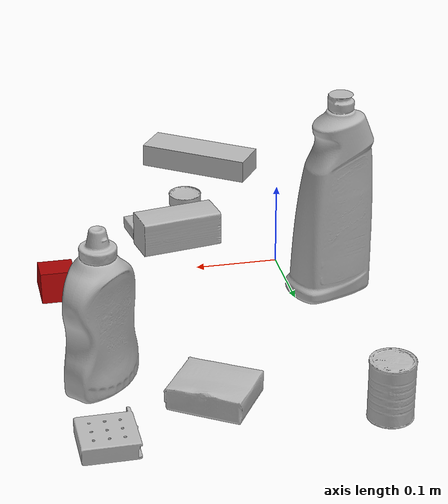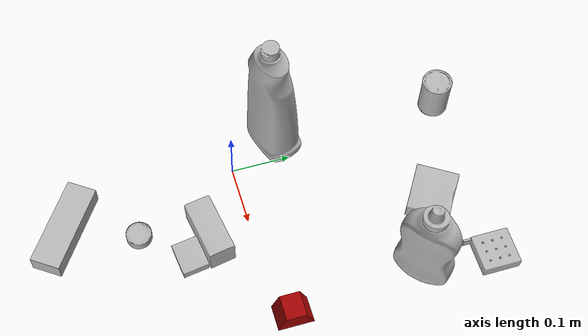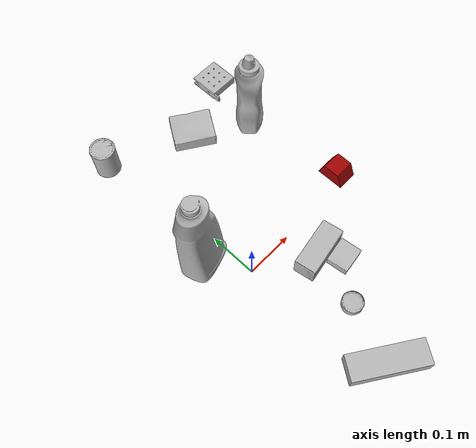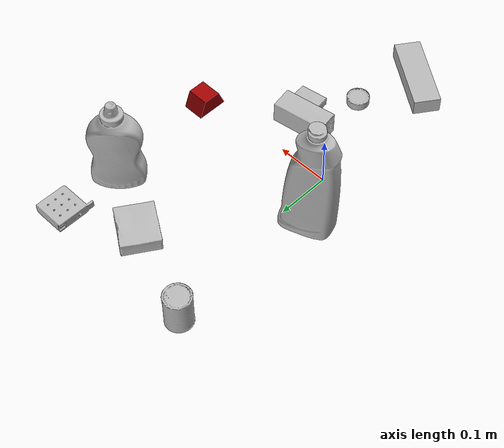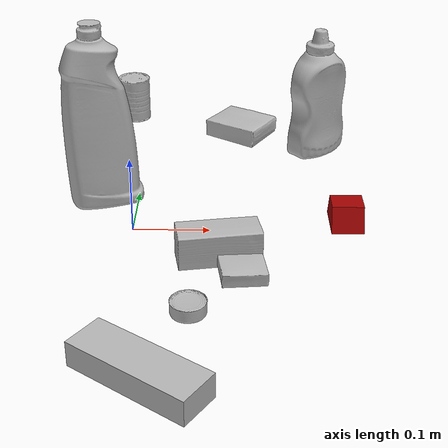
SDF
<sdf version="1.4">
  <world name="default">
    <light name="light1" type="point">
      <pose>0 0 1 0 0 0</pose>
      <diffuse>3 3 3 1</diffuse>
      <specular>3 3 3 1</specular>
    </light>
    <light name="light2" type="point">
      <pose>0 0.5 2 0 0 0</pose>
      <diffuse>1 1 1 1</diffuse>
      <specular>1 1 1 1</specular>
    </light>
    <light name="light3" type="point">
      <pose>0 0.5 2 0 0 0</pose>
      <diffuse>3 3 3 1</diffuse>
      <specular>3 3 3 1</specular>
    </light>
    <scene>
      <ambient>0.7 0.7 0.7</ambient>
    </scene>
    <model name="bottle1">
      <link name="link_bottle1">
        <collision name="default">
          <geometry>
            <mesh>
              <uri>model://mustard_bottle/collision_meshes/collision.obj</uri>
              <scale>1.0 1.0 1.0</scale>
            </mesh>
          </geometry>
          <surface>
            <friction>
              <ode>
                <mu>0.5</mu>
                <mu2>0.5</mu2>
              </ode>
            </friction>
          <contact>
        <ode>
            <max_vel>0</max_vel>
            <min_depth>0.0001</min_depth>
            <kp>1e8</kp>
        </ode>
    </contact></surface>
        </collision>
        <visual name="default">
          <geometry>
            <mesh>
              <uri>model://mustard_bottle/visual_meshes/visual.dae</uri>
              <scale>1.0 1.0 1.0</scale>
            </mesh>
          </geometry>
        </visual>
        <inertial>
          <mass>0.6762011647224426</mass>
          <pose>0.0005032454500906169 -0.00015647402324248105 -0.0174757931381464 0.0004182330054410876 0.0009465793907204819 0.02485376893997312</pose>
          <inertia>
            <ixx>0.001877718</ixx>
            <iyy>0.0016475386</iyy>
            <izz>0.0004948735</izz>
            <ixy>0</ixy>
            <ixz>0</ixz>
            <iyz>0</iyz>
          </inertia>
        </inertial>
      </link>
      <pose>0.2562059164047241 0.24801185727119446 0.09615200012922287 1.4504944719496044e-05 1.6318198130880075e-05 2.2946861771902074</pose>
    </model>
    <model name="bottle2">
      <link name="link_bottle2">
        <collision name="default">
          <geometry>
            <mesh>
              <uri>model://bleach_cleanser/collision_meshes/collision.obj</uri>
              <scale>1.0 1.0 1.0</scale>
            </mesh>
          </geometry>
          <surface>
            <friction>
              <ode>
                <mu>0.5</mu>
                <mu2>0.5</mu2>
              </ode>
            </friction>
          <contact>
        <ode>
            <max_vel>0</max_vel>
            <min_depth>0.0001</min_depth>
            <kp>1e8</kp>
        </ode>
    </contact></surface>
        </collision>
        <visual name="default">
          <geometry>
            <mesh>
              <uri>model://bleach_cleanser/visual_meshes/visual.dae</uri>
              <scale>1.0 1.0 1.0</scale>
            </mesh>
          </geometry>
        </visual>
        <inertial>
          <mass>1.3947629928588867</mass>
          <pose>0.00012193183647468686 0.0037838828284293413 -0.02442161738872528 -0.07381670616230765 0.000420115363335565 -0.006875068774372656</pose>
          <inertia>
            <ixx>0.0067885136</ixx>
            <iyy>0.006325901</iyy>
            <izz>0.0011606595</izz>
            <ixy>0</ixy>
            <ixz>0</ixz>
            <iyz>0</iyz>
          </inertia>
        </inertial>
      </link>
      <pose>-0.04519686475396156 0.08468474447727203 0.12578411400318146 -0.00019981065731093265 1.638980417549781e-05 1.9115254760070866</pose>
    </model>
    <model name="toy1">
      <link name="link_toy1">
        <collision name="default">
          <geometry>
            <mesh>
              <uri>model://nine_hole_peg_test/collision_meshes/collision.obj</uri>
              <scale>0.5 0.5 0.5</scale>
            </mesh>
          </geometry>
          <surface>
            <friction>
              <ode>
                <mu>0.5</mu>
                <mu2>0.5</mu2>
              </ode>
            </friction>
          <contact>
        <ode>
            <max_vel>0</max_vel>
            <min_depth>0.0001</min_depth>
            <kp>1e8</kp>
        </ode>
    </contact></surface>
        </collision>
        <visual name="default">
          <geometry>
            <mesh>
              <uri>model://nine_hole_peg_test/visual_meshes/visual.dae</uri>
              <scale>0.5 0.5 0.5</scale>
            </mesh>
          </geometry>
        </visual>
        <inertial>
          <mass>0.11556825786828995</mass>
          <pose>-0.0023086932487785816 -0.004823807626962662 1.3230343029135838e-05 -0.0014666797633517714 0.0007194158879745651 -0.6342419016734399</pose>
          <inertia>
            <ixx>4.5177487e-05</ixx>
            <iyy>4.2181746e-05</iyy>
            <izz>7.9164296e-05</izz>
            <ixy>0</ixy>
            <ixz>0</ixz>
            <iyz>0</iyz>
          </inertia>
        </inertial>
      </link>
      <pose>0.26567113399505615 0.3628848195075989 0.010385499335825443 4.736883848651608e-09 2.291737113886799e-08 -3.13458986901745</pose>
    </model>
    <model name="toy2">
      <link name="link_toy2">
        <collision name="default">
          <geometry>
            <mesh>
              <uri>model://prism/collision_meshes/collision.obj</uri>
              <scale>0.5 0.5 0.5</scale>
            </mesh>
          </geometry>
          <surface>
            <friction>
              <ode>
                <mu>0.5</mu>
                <mu2>0.5</mu2>
              </ode>
            </friction>
          <contact>
        <ode>
            <max_vel>0</max_vel>
            <min_depth>0.0001</min_depth>
            <kp>1e8</kp>
        </ode>
    </contact></surface>
        </collision>
        <visual name="default">
          <geometry>
            <mesh>
              <uri>model://prism/visual_meshes/visual.dae</uri>
              <scale>0.5 0.5 0.5</scale>
            </mesh>
          </geometry>
        </visual>
        <inertial>
          <mass>0.033433690667152405</mass>
          <pose>-4.9267986469203606e-05 -2.480786349678965e-07 -0.001693455153144896 0.0 0.00655918030046738 0.0</pose>
          <inertia>
            <ixx>7.543374e-06</ixx>
            <iyy>9.116264e-06</iyy>
            <izz>1.1166334e-05</izz>
            <ixy>0</ixy>
            <ixz>0</ixz>
            <iyz>0</iyz>
          </inertia>
        </inertial>
      </link>
      <pose>0.2775512933731079 0.023454006761312485 0.016085000708699226 3.062605585801848e-08 -4.915866376437988e-09 1.5692800864357792</pose>
    </model>
    <model name="can1">
      <link name="link_can1">
        <collision name="default">
          <geometry>
            <mesh>
              <uri>model://master_chef_can/collision_meshes/collision.obj</uri>
              <scale>0.5 0.5 0.5</scale>
            </mesh>
          </geometry>
          <surface>
            <friction>
              <ode>
                <mu>0.5</mu>
                <mu2>0.5</mu2>
              </ode>
            </friction>
          <contact>
        <ode>
            <max_vel>0</max_vel>
            <min_depth>0.0001</min_depth>
            <kp>1e8</kp>
        </ode>
    </contact></surface>
        </collision>
        <visual name="default">
          <geometry>
            <mesh>
              <uri>model://master_chef_can/visual_meshes/visual.dae</uri>
              <scale>0.5 0.5 0.5</scale>
            </mesh>
          </geometry>
        </visual>
        <inertial>
          <mass>0.10766725987195969</mass>
          <pose>-4.661964703700505e-05 1.3926853625889635e-07 -5.079878610558808e-05 -0.0017995160150511523 0.000647916474058074 -0.6102670332280266</pose>
          <inertia>
            <ixx>6.319339e-05</ixx>
            <iyy>6.2728286e-05</iyy>
            <izz>3.491918e-05</izz>
            <ixy>0</ixy>
            <ixz>0</ixz>
            <iyz>0</iyz>
          </inertia>
        </inertial>
      </link>
      <pose>-0.03426642343401909 0.37385252118110657 0.03530197963118553 -1.5468988003752314e-06 -8.713440839880931e-07 0.14895277108438534</pose>
    </model>
    <model name="can2">
      <link name="link_can2">
        <collision name="default">
          <geometry>
            <mesh>
              <uri>model://tuna_fish_can/collision_meshes/collision.obj</uri>
              <scale>0.5 0.5 0.5</scale>
            </mesh>
          </geometry>
          <surface>
            <friction>
              <ode>
                <mu>0.5</mu>
                <mu2>0.5</mu2>
              </ode>
            </friction>
          <contact>
        <ode>
            <max_vel>0</max_vel>
            <min_depth>0.0001</min_depth>
            <kp>1e8</kp>
        </ode>
    </contact></surface>
        </collision>
        <visual name="default">
          <geometry>
            <mesh>
              <uri>model://tuna_fish_can/visual_meshes/visual.dae</uri>
              <scale>0.5 0.5 0.5</scale>
            </mesh>
          </geometry>
        </visual>
        <inertial>
          <mass>0.02740846574306488</mass>
          <pose>-2.0361561837489717e-05 -7.256384378706571e-06 -0.0005269024986773729 -0.0017944791545750336 0.000171617609773777 0.24054039995463303</pose>
          <inertia>
            <ixx>3.7056664e-06</ixx>
            <iyy>3.6902204e-06</iyy>
            <izz>6.3409243e-06</izz>
            <ixy>0</ixy>
            <ixz>0</ixz>
            <iyz>0</iyz>
          </inertia>
        </inertial>
      </link>
      <pose>0.0802685022354126 -0.17972274124622345 0.008520000614225864 -4.379180487202108e-09 -1.4246488908696159e-09 -2.101490019559156</pose>
    </model>
    <model name="box1">
      <link name="link_box1">
        <collision name="default">
          <geometry>
            <mesh>
              <uri>model://gelatin_box/collision_meshes/collision.obj</uri>
              <scale>1.0 1.0 1.0</scale>
            </mesh>
          </geometry>
          <surface>
            <friction>
              <ode>
                <mu>0.5</mu>
                <mu2>0.5</mu2>
              </ode>
            </friction>
          <contact>
        <ode>
            <max_vel>0</max_vel>
            <min_depth>0.0001</min_depth>
            <kp>1e8</kp>
        </ode>
    </contact></surface>
        </collision>
        <visual name="default">
          <geometry>
            <mesh>
              <uri>model://gelatin_box/visual_meshes/visual.dae</uri>
              <scale>1.0 1.0 1.0</scale>
            </mesh>
          </geometry>
        </visual>
        <inertial>
          <mass>0.1693437397480011</mass>
          <pose>0.0004319618456065655 0.00011156872642459348 -0.00036403213744051754 -0.0010503721973280913 -0.004755817758053359 0.01644055760876268</pose>
          <inertia>
            <ixx>0.00011954286</ixx>
            <iyy>8.538885e-05</iyy>
            <izz>0.0001819709</izz>
            <ixy>0</ixy>
            <ixz>0</ixz>
            <iyz>0</iyz>
          </inertia>
        </inertial>
      </link>
      <pose>0.14273633062839508 0.3057984709739685 0.01516831573098898 0.0055974860294197 -0.007304570946573848 0.994255175365566</pose>
    </model>
    <model name="box2">
      <link name="link_box2">
        <collision name="default">
          <geometry>
            <mesh>
              <uri>model://pudding_box/collision_meshes/collision.obj</uri>
              <scale>0.5 0.5 0.5</scale>
            </mesh>
          </geometry>
          <surface>
            <friction>
              <ode>
                <mu>0.5</mu>
                <mu2>0.5</mu2>
              </ode>
            </friction>
          <contact>
        <ode>
            <max_vel>0</max_vel>
            <min_depth>0.0001</min_depth>
            <kp>1e8</kp>
        </ode>
    </contact></surface>
        </collision>
        <visual name="default">
          <geometry>
            <mesh>
              <uri>model://pudding_box/visual_meshes/visual.dae</uri>
              <scale>0.5 0.5 0.5</scale>
            </mesh>
          </geometry>
        </visual>
        <inertial>
          <mass>0.04695427790284157</mass>
          <pose>0.00024474109522998333 0.00040339428232982755 -0.0002594413817860186 0.005213102262859105 -0.0066037982576109796 0.020079825159299278</pose>
          <inertia>
            <ixx>1.3269848e-05</ixx>
            <iyy>8.9280475e-06</iyy>
            <izz>1.95964e-05</izz>
            <ixy>0</ixy>
            <ixz>0</ixz>
            <iyz>0</iyz>
          </inertia>
        </inertial>
      </link>
      <pose>0.1413271725177765 -0.10857348889112473 0.009862901642918587 0.02234969837937478 -0.011390965372822881 1.7083597732733806</pose>
    </model>
    <model name="box3">
      <link name="link_box3">
        <collision name="default">
          <geometry>
            <mesh>
              <uri>model://wood_block/collision_meshes/collision.obj</uri>
              <scale>0.5 0.5 0.5</scale>
            </mesh>
          </geometry>
          <surface>
            <friction>
              <ode>
                <mu>0.5</mu>
                <mu2>0.5</mu2>
              </ode>
            </friction>
          <contact>
        <ode>
            <max_vel>0</max_vel>
            <min_depth>0.0001</min_depth>
            <kp>1e8</kp>
        </ode>
    </contact></surface>
        </collision>
        <visual name="default">
          <geometry>
            <mesh>
              <uri>model://wood_block/visual_meshes/visual.dae</uri>
              <scale>0.5 0.5 0.5</scale>
            </mesh>
          </geometry>
        </visual>
        <inertial>
          <mass>0.2591375410556793</mass>
          <pose>-2.9066577553749084e-06 -0.00028540476341731846 0.00013204291462898254 -0.05221026556657302 -0.005192695801982805 -0.006861378038707315</pose>
          <inertia>
            <ixx>8.669131e-05</ixx>
            <iyy>0.00027385785</iyy>
            <izz>0.00027283354</izz>
            <ixy>0</ixy>
            <ixz>0</ixz>
            <iyz>0</iyz>
          </inertia>
        </inertial>
      </link>
      <pose>0.11169808357954025 -0.06801377981901169 0.022629257291555405 -0.005208433226427535 0.005718745261920393 -2.972637022304639</pose>
    </model>
    <model name="box4">
      <link name="link_box4">
        <collision name="default">
          <geometry>
            <mesh>
              <uri>model://jenga/collision_meshes/collision.obj</uri>
              <scale>1.0 1.0 1.0</scale>
            </mesh>
          </geometry>
          <surface>
            <friction>
              <ode>
                <mu>0.5</mu>
                <mu2>0.5</mu2>
              </ode>
            </friction>
          <contact>
        <ode>
            <max_vel>0</max_vel>
            <min_depth>0.0001</min_depth>
            <kp>1e8</kp>
        </ode>
    </contact></surface>
        </collision>
        <visual name="default">
          <geometry>
            <mesh>
              <uri>model://jenga/visual_meshes/visual.dae</uri>
              <scale>1.0 1.0 1.0</scale>
            </mesh>
          </geometry>
        </visual>
        <inertial>
          <mass>0.14610815048217773</mass>
          <pose>-2.502855807051674e-07 -0.00010250010382151231 -4.092339804628864e-05 0.0 -7.342155186052628e-07 0.0</pose>
          <inertia>
            <ixx>4.043167e-05</ixx>
            <iyy>0.0002739639</iyy>
            <izz>0.00029247976</izz>
            <ixy>0</ixy>
            <ixz>0</ixz>
            <iyz>0</iyz>
          </inertia>
        </inertial>
      </link>
      <pose>0.03718903660774231 -0.2936991751194 0.014999995939433575 6.2807389983423115e-09 2.0112613242669608e-09 -0.604492193849117</pose>
    </model>
  <physics type="ode">
      <max_contacts>50</max_contacts>
      <ode>
        <solver>
          <type>quick</type>
          <iters>75</iters>
        </solver>
        <constraints>
          <contact_max_correcting_vel>0</contact_max_correcting_vel>
          <contact_surface_layer>0</contact_surface_layer>
        </constraints>
      </ode>
    </physics></world>
</sdf>
